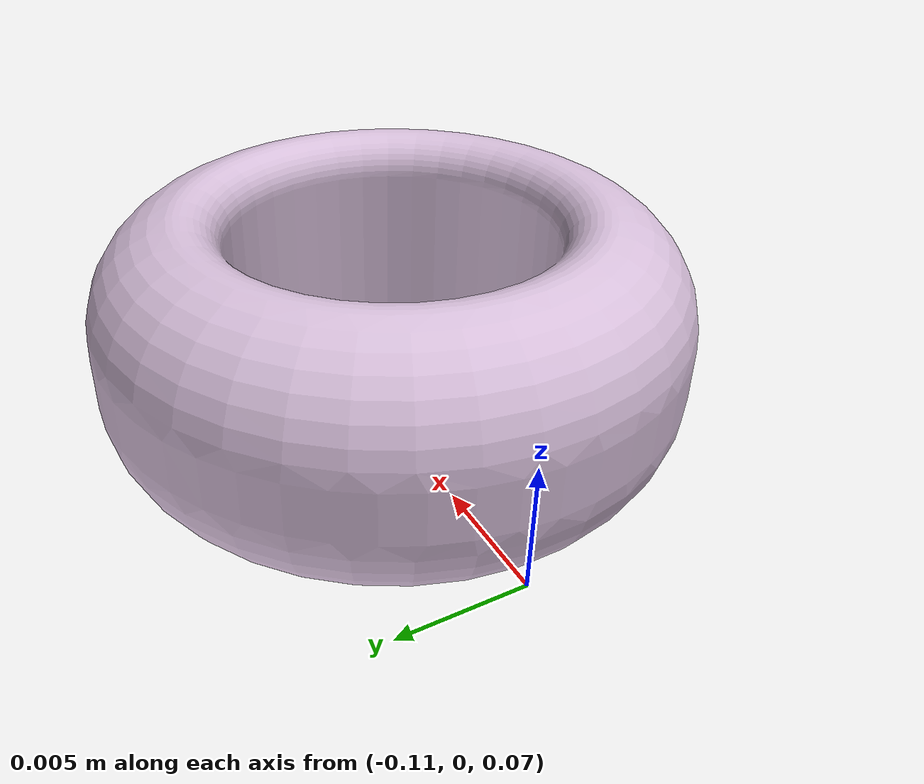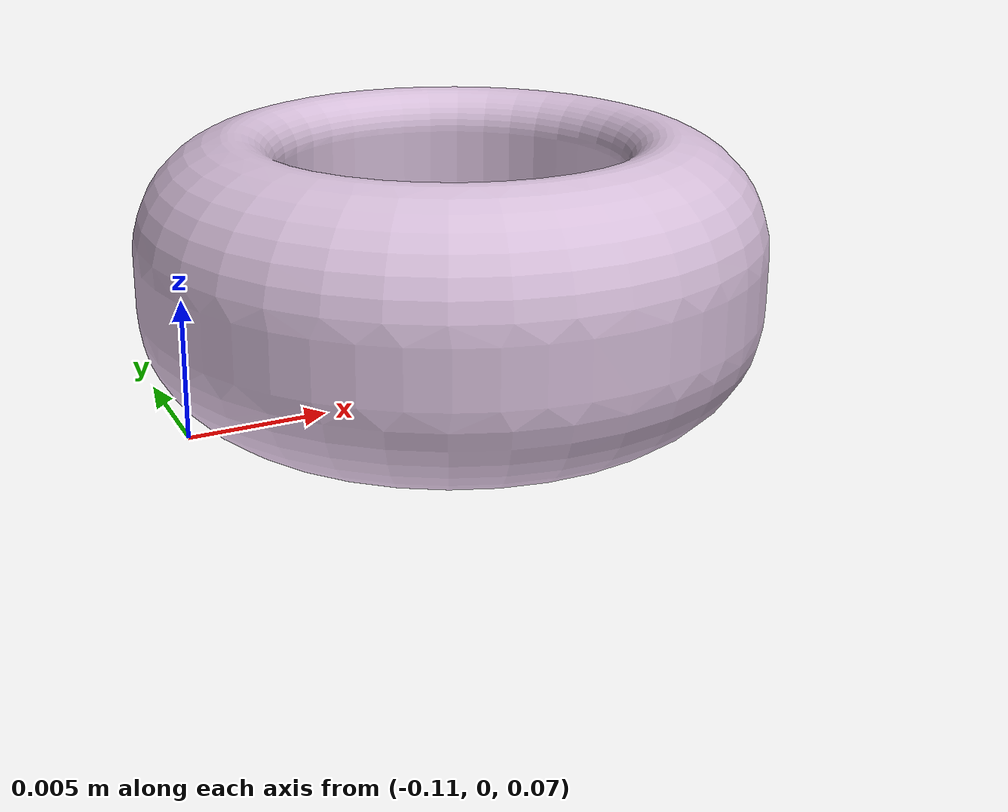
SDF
<?xml version="1.0" ?>
<sdf version="1.6">
    <model name="disk7">
        <link name="disk7">
            <frame name="disk7_frame"><pose>0 0 0 0 0 0</pose></frame>
            <visual name="disk7_0_disk7_visual">
                <pose>0 0 0 0 0 0</pose>
                <geometry>
                    <mesh>
                        <uri>file://home/leo/workspace/ur_gz/src/Universal_Robots_ROS2_Ignition_Simulation/ur_simulation_gz/sdf/models/disk7/disk7.dae</uri>
                    </mesh>
                </geometry>
                <material>
                    <ambient>0.85098039215686271941 0.7568627450980391913 0.86666666666666669627 1</ambient>
                    <diffuse>0.85098039215686271941 0.7568627450980391913 0.86666666666666669627 1</diffuse>
                    <specular>0.1 0.1 0.1 1</specular>
                    <emissive>0 0 0 0</emissive>
                </material>
            </visual>
            <collision name="disk7_0_disk7_visual">
                <pose>0 0 0 0 0 0</pose>
                <geometry>
                    <mesh>
                        <uri>file://home/leo/workspace/ur_gz/src/Universal_Robots_ROS2_Ignition_Simulation/ur_simulation_gz/sdf/models/disk7/disk7.stl </uri>
                    </mesh>
                </geometry>
            </collision>
            <inertial>
                <pose>-3.5266354118998681385e-17 -0.032500000000000021927 0.056499999999999987732 0 0 0</pose>
                <mass>0.00609044</mass>
                <inertia>
                    <ixx>2.772-07</ixx><ixy>0</ixy><ixz>0</ixz>
                    <iyy>2.772-07</iyy><iyz>0</iyz>
                    <izz>4.777e-07</izz>
                </inertia>
            </inertial>
        </link>
    </model>
</sdf>
